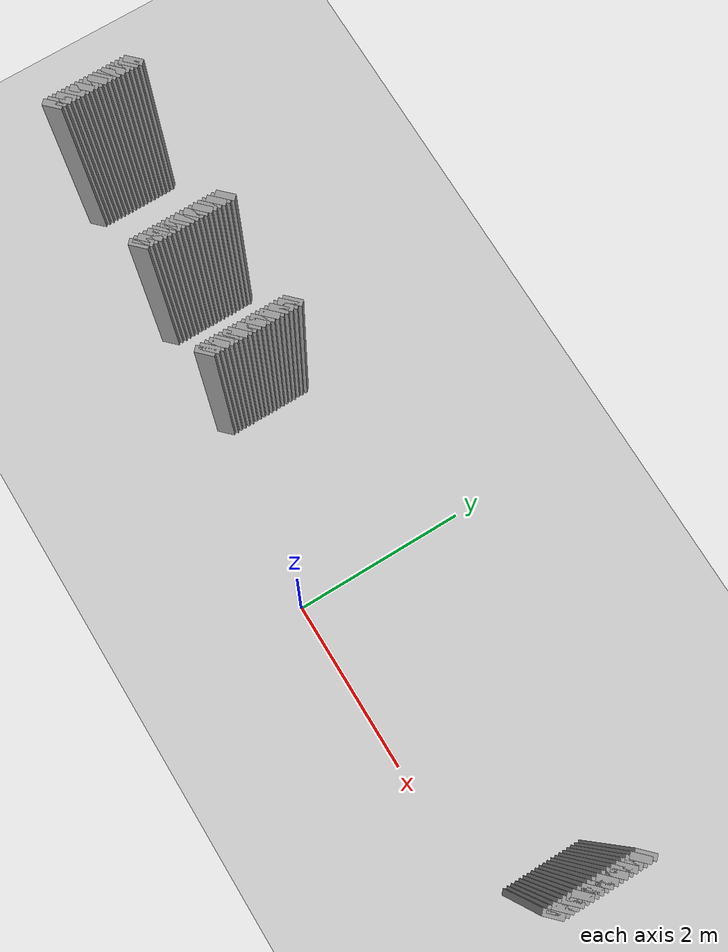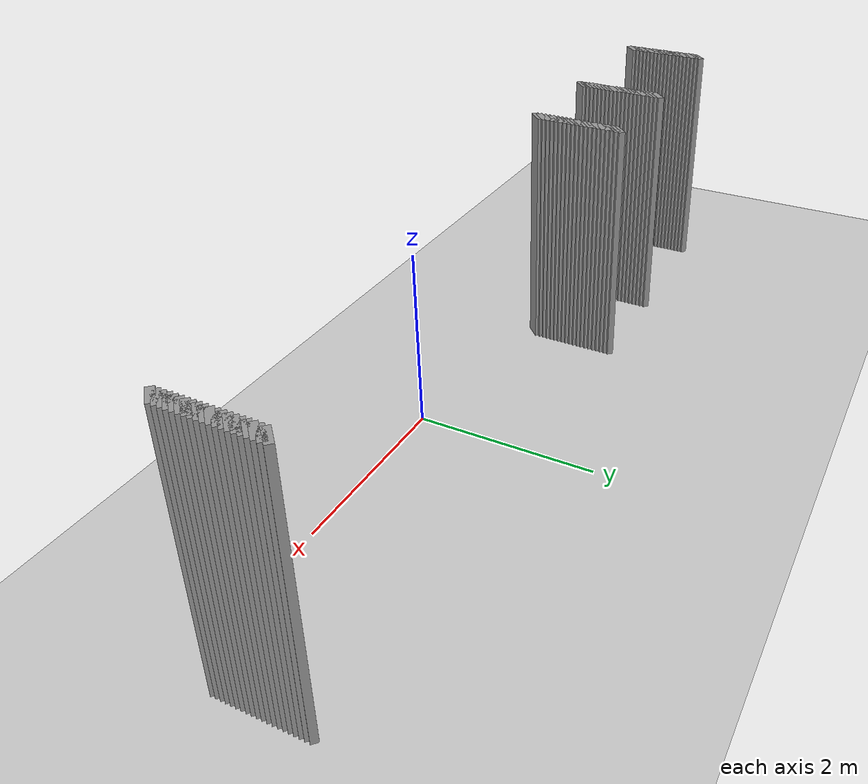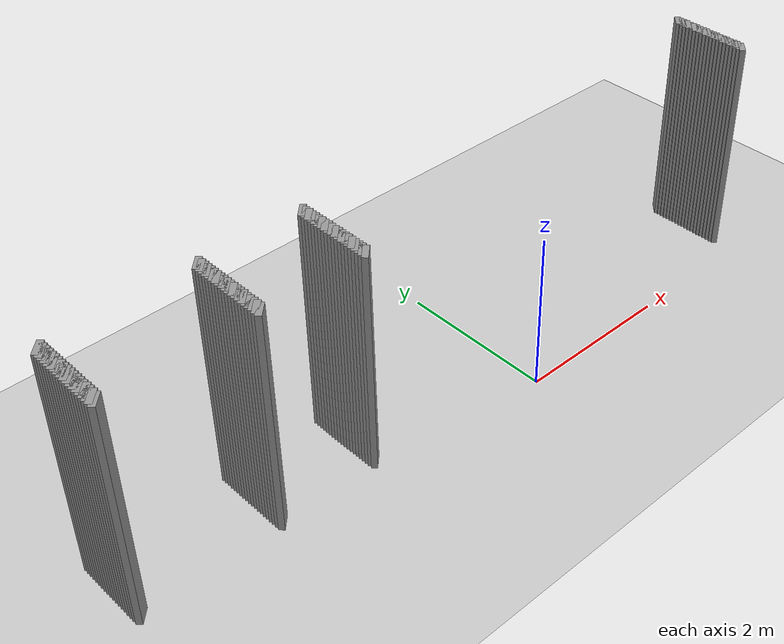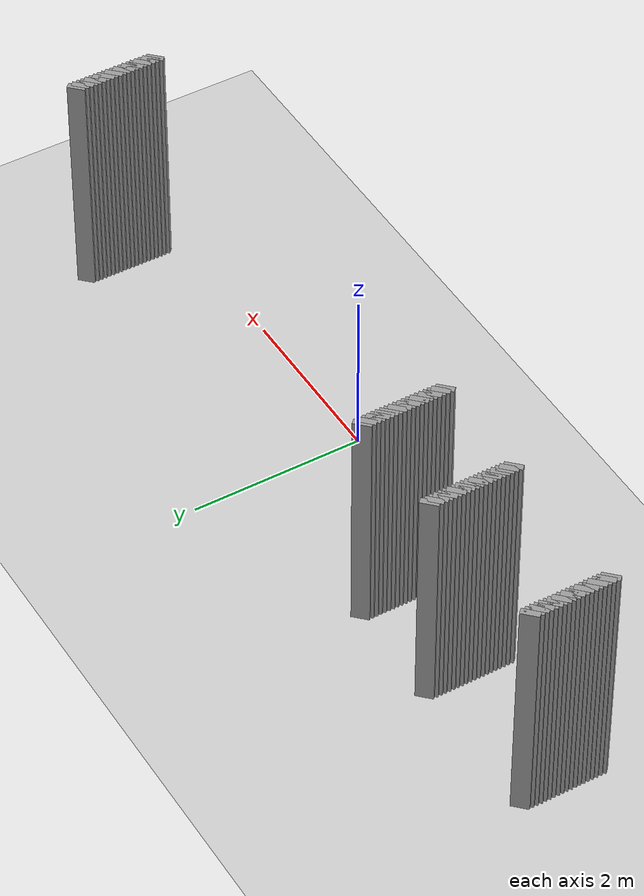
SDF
<sdf version="1.5">
 <world name="default">
  <include><uri>model://ground_plane</uri></include>
  <include><uri>model://sun</uri></include>
  <model name="grey_wall_786">
   <static>1</static>
   <link name="link">
    <pose>-3.425 1.275  1.4 0 0 -0.785398163397</pose>
    <collision name="collision"><geometry><box><size>0.0707106781187 .2  2.8</size></box></geometry></collision>
    <visual name="visual">
     <cast_shadows>0</cast_shadows>
     <geometry><box><size>0.0707106781187 .2  2.8</size></box></geometry>
     <material>
      <script>
       <uri>model://grey_wall/materials/scripts</uri>
       <uri>model://grey_wall/materials/textures</uri>
       <name>vrc/grey_wall</name>
      </script>
     </material>
    </visual>
   </link>
  </model>
  <model name="grey_wall_787">
   <static>1</static>
   <link name="link">
    <pose>-2.175 1.275  1.4 0 0 -0.785398163397</pose>
    <collision name="collision"><geometry><box><size>0.0707106781187 .2  2.8</size></box></geometry></collision>
    <visual name="visual">
     <cast_shadows>0</cast_shadows>
     <geometry><box><size>0.0707106781187 .2  2.8</size></box></geometry>
     <material>
      <script>
       <uri>model://grey_wall/materials/scripts</uri>
       <uri>model://grey_wall/materials/textures</uri>
       <name>vrc/grey_wall</name>
      </script>
     </material>
    </visual>
   </link>
  </model>
  <model name="grey_wall_788">
   <static>1</static>
   <link name="link">
    <pose>3.725 1.275  1.4 0 0 -0.785398163397</pose>
    <collision name="collision"><geometry><box><size>0.0707106781187 .2  2.8</size></box></geometry></collision>
    <visual name="visual">
     <cast_shadows>0</cast_shadows>
     <geometry><box><size>0.0707106781187 .2  2.8</size></box></geometry>
     <material>
      <script>
       <uri>model://grey_wall/materials/scripts</uri>
       <uri>model://grey_wall/materials/textures</uri>
       <name>vrc/grey_wall</name>
      </script>
     </material>
    </visual>
   </link>
  </model>
  <model name="grey_wall_789">
   <static>1</static>
   <link name="link">
    <pose>-5.125 1.225  1.4 0 0 -0.785398163397</pose>
    <collision name="collision"><geometry><box><size>0.0707106781187 .2  2.8</size></box></geometry></collision>
    <visual name="visual">
     <cast_shadows>0</cast_shadows>
     <geometry><box><size>0.0707106781187 .2  2.8</size></box></geometry>
     <material>
      <script>
       <uri>model://grey_wall/materials/scripts</uri>
       <uri>model://grey_wall/materials/textures</uri>
       <name>vrc/grey_wall</name>
      </script>
     </material>
    </visual>
   </link>
  </model>
  <model name="grey_wall_790">
   <static>1</static>
   <link name="link">
    <pose>-3.425 1.225  1.4 0 0 -0.785398163397</pose>
    <collision name="collision"><geometry><box><size>0.0707106781187 .2  2.8</size></box></geometry></collision>
    <visual name="visual">
     <cast_shadows>0</cast_shadows>
     <geometry><box><size>0.0707106781187 .2  2.8</size></box></geometry>
     <material>
      <script>
       <uri>model://grey_wall/materials/scripts</uri>
       <uri>model://grey_wall/materials/textures</uri>
       <name>vrc/grey_wall</name>
      </script>
     </material>
    </visual>
   </link>
  </model>
  <model name="grey_wall_791">
   <static>1</static>
   <link name="link">
    <pose>-2.175 1.225  1.4 0 0 -0.785398163397</pose>
    <collision name="collision"><geometry><box><size>0.0707106781187 .2  2.8</size></box></geometry></collision>
    <visual name="visual">
     <cast_shadows>0</cast_shadows>
     <geometry><box><size>0.0707106781187 .2  2.8</size></box></geometry>
     <material>
      <script>
       <uri>model://grey_wall/materials/scripts</uri>
       <uri>model://grey_wall/materials/textures</uri>
       <name>vrc/grey_wall</name>
      </script>
     </material>
    </visual>
   </link>
  </model>
  <model name="grey_wall_792">
   <static>1</static>
   <link name="link">
    <pose>3.725 1.225  1.4 0 0 -0.785398163397</pose>
    <collision name="collision"><geometry><box><size>0.0707106781187 .2  2.8</size></box></geometry></collision>
    <visual name="visual">
     <cast_shadows>0</cast_shadows>
     <geometry><box><size>0.0707106781187 .2  2.8</size></box></geometry>
     <material>
      <script>
       <uri>model://grey_wall/materials/scripts</uri>
       <uri>model://grey_wall/materials/textures</uri>
       <name>vrc/grey_wall</name>
      </script>
     </material>
    </visual>
   </link>
  </model>
  <model name="grey_wall_793">
   <static>1</static>
   <link name="link">
    <pose>-5.125 1.175  1.4 0 0 -0.785398163397</pose>
    <collision name="collision"><geometry><box><size>0.0707106781187 .2  2.8</size></box></geometry></collision>
    <visual name="visual">
     <cast_shadows>0</cast_shadows>
     <geometry><box><size>0.0707106781187 .2  2.8</size></box></geometry>
     <material>
      <script>
       <uri>model://grey_wall/materials/scripts</uri>
       <uri>model://grey_wall/materials/textures</uri>
       <name>vrc/grey_wall</name>
      </script>
     </material>
    </visual>
   </link>
  </model>
  <model name="grey_wall_794">
   <static>1</static>
   <link name="link">
    <pose>-3.425 1.175  1.4 0 0 -0.785398163397</pose>
    <collision name="collision"><geometry><box><size>0.0707106781187 .2  2.8</size></box></geometry></collision>
    <visual name="visual">
     <cast_shadows>0</cast_shadows>
     <geometry><box><size>0.0707106781187 .2  2.8</size></box></geometry>
     <material>
      <script>
       <uri>model://grey_wall/materials/scripts</uri>
       <uri>model://grey_wall/materials/textures</uri>
       <name>vrc/grey_wall</name>
      </script>
     </material>
    </visual>
   </link>
  </model>
  <model name="grey_wall_795">
   <static>1</static>
   <link name="link">
    <pose>-2.175 1.175  1.4 0 0 -0.785398163397</pose>
    <collision name="collision"><geometry><box><size>0.0707106781187 .2  2.8</size></box></geometry></collision>
    <visual name="visual">
     <cast_shadows>0</cast_shadows>
     <geometry><box><size>0.0707106781187 .2  2.8</size></box></geometry>
     <material>
      <script>
       <uri>model://grey_wall/materials/scripts</uri>
       <uri>model://grey_wall/materials/textures</uri>
       <name>vrc/grey_wall</name>
      </script>
     </material>
    </visual>
   </link>
  </model>
  <model name="grey_wall_796">
   <static>1</static>
   <link name="link">
    <pose>3.725 1.175  1.4 0 0 -0.785398163397</pose>
    <collision name="collision"><geometry><box><size>0.0707106781187 .2  2.8</size></box></geometry></collision>
    <visual name="visual">
     <cast_shadows>0</cast_shadows>
     <geometry><box><size>0.0707106781187 .2  2.8</size></box></geometry>
     <material>
      <script>
       <uri>model://grey_wall/materials/scripts</uri>
       <uri>model://grey_wall/materials/textures</uri>
       <name>vrc/grey_wall</name>
      </script>
     </material>
    </visual>
   </link>
  </model>
  <model name="grey_wall_797">
   <static>1</static>
   <link name="link">
    <pose>-5.125 1.125  1.4 0 0 -0.785398163397</pose>
    <collision name="collision"><geometry><box><size>0.0707106781187 .2  2.8</size></box></geometry></collision>
    <visual name="visual">
     <cast_shadows>0</cast_shadows>
     <geometry><box><size>0.0707106781187 .2  2.8</size></box></geometry>
     <material>
      <script>
       <uri>model://grey_wall/materials/scripts</uri>
       <uri>model://grey_wall/materials/textures</uri>
       <name>vrc/grey_wall</name>
      </script>
     </material>
    </visual>
   </link>
  </model>
  <model name="grey_wall_798">
   <static>1</static>
   <link name="link">
    <pose>-3.425 1.125  1.4 0 0 -0.785398163397</pose>
    <collision name="collision"><geometry><box><size>0.0707106781187 .2  2.8</size></box></geometry></collision>
    <visual name="visual">
     <cast_shadows>0</cast_shadows>
     <geometry><box><size>0.0707106781187 .2  2.8</size></box></geometry>
     <material>
      <script>
       <uri>model://grey_wall/materials/scripts</uri>
       <uri>model://grey_wall/materials/textures</uri>
       <name>vrc/grey_wall</name>
      </script>
     </material>
    </visual>
   </link>
  </model>
  <model name="grey_wall_799">
   <static>1</static>
   <link name="link">
    <pose>-2.175 1.125  1.4 0 0 -0.785398163397</pose>
    <collision name="collision"><geometry><box><size>0.0707106781187 .2  2.8</size></box></geometry></collision>
    <visual name="visual">
     <cast_shadows>0</cast_shadows>
     <geometry><box><size>0.0707106781187 .2  2.8</size></box></geometry>
     <material>
      <script>
       <uri>model://grey_wall/materials/scripts</uri>
       <uri>model://grey_wall/materials/textures</uri>
       <name>vrc/grey_wall</name>
      </script>
     </material>
    </visual>
   </link>
  </model>
  <model name="grey_wall_800">
   <static>1</static>
   <link name="link">
    <pose>3.725 1.125  1.4 0 0 -0.785398163397</pose>
    <collision name="collision"><geometry><box><size>0.0707106781187 .2  2.8</size></box></geometry></collision>
    <visual name="visual">
     <cast_shadows>0</cast_shadows>
     <geometry><box><size>0.0707106781187 .2  2.8</size></box></geometry>
     <material>
      <script>
       <uri>model://grey_wall/materials/scripts</uri>
       <uri>model://grey_wall/materials/textures</uri>
       <name>vrc/grey_wall</name>
      </script>
     </material>
    </visual>
   </link>
  </model>
  <model name="grey_wall_801">
   <static>1</static>
   <link name="link">
    <pose>-5.125 1.075  1.4 0 0 -0.785398163397</pose>
    <collision name="collision"><geometry><box><size>0.0707106781187 .2  2.8</size></box></geometry></collision>
    <visual name="visual">
     <cast_shadows>0</cast_shadows>
     <geometry><box><size>0.0707106781187 .2  2.8</size></box></geometry>
     <material>
      <script>
       <uri>model://grey_wall/materials/scripts</uri>
       <uri>model://grey_wall/materials/textures</uri>
       <name>vrc/grey_wall</name>
      </script>
     </material>
    </visual>
   </link>
  </model>
  <model name="grey_wall_802">
   <static>1</static>
   <link name="link">
    <pose>-3.425 1.075  1.4 0 0 -0.785398163397</pose>
    <collision name="collision"><geometry><box><size>0.0707106781187 .2  2.8</size></box></geometry></collision>
    <visual name="visual">
     <cast_shadows>0</cast_shadows>
     <geometry><box><size>0.0707106781187 .2  2.8</size></box></geometry>
     <material>
      <script>
       <uri>model://grey_wall/materials/scripts</uri>
       <uri>model://grey_wall/materials/textures</uri>
       <name>vrc/grey_wall</name>
      </script>
     </material>
    </visual>
   </link>
  </model>
  <model name="grey_wall_803">
   <static>1</static>
   <link name="link">
    <pose>-2.175 1.075  1.4 0 0 -0.785398163397</pose>
    <collision name="collision"><geometry><box><size>0.0707106781187 .2  2.8</size></box></geometry></collision>
    <visual name="visual">
     <cast_shadows>0</cast_shadows>
     <geometry><box><size>0.0707106781187 .2  2.8</size></box></geometry>
     <material>
      <script>
       <uri>model://grey_wall/materials/scripts</uri>
       <uri>model://grey_wall/materials/textures</uri>
       <name>vrc/grey_wall</name>
      </script>
     </material>
    </visual>
   </link>
  </model>
  <model name="grey_wall_804">
   <static>1</static>
   <link name="link">
    <pose>3.725 1.075  1.4 0 0 -0.785398163397</pose>
    <collision name="collision"><geometry><box><size>0.0707106781187 .2  2.8</size></box></geometry></collision>
    <visual name="visual">
     <cast_shadows>0</cast_shadows>
     <geometry><box><size>0.0707106781187 .2  2.8</size></box></geometry>
     <material>
      <script>
       <uri>model://grey_wall/materials/scripts</uri>
       <uri>model://grey_wall/materials/textures</uri>
       <name>vrc/grey_wall</name>
      </script>
     </material>
    </visual>
   </link>
  </model>
  <model name="grey_wall_805">
   <static>1</static>
   <link name="link">
    <pose>-5.125 1.025  1.4 0 0 -0.785398163397</pose>
    <collision name="collision"><geometry><box><size>0.0707106781187 .2  2.8</size></box></geometry></collision>
    <visual name="visual">
     <cast_shadows>0</cast_shadows>
     <geometry><box><size>0.0707106781187 .2  2.8</size></box></geometry>
     <material>
      <script>
       <uri>model://grey_wall/materials/scripts</uri>
       <uri>model://grey_wall/materials/textures</uri>
       <name>vrc/grey_wall</name>
      </script>
     </material>
    </visual>
   </link>
  </model>
  <model name="grey_wall_806">
   <static>1</static>
   <link name="link">
    <pose>-3.425 1.025  1.4 0 0 -0.785398163397</pose>
    <collision name="collision"><geometry><box><size>0.0707106781187 .2  2.8</size></box></geometry></collision>
    <visual name="visual">
     <cast_shadows>0</cast_shadows>
     <geometry><box><size>0.0707106781187 .2  2.8</size></box></geometry>
     <material>
      <script>
       <uri>model://grey_wall/materials/scripts</uri>
       <uri>model://grey_wall/materials/textures</uri>
       <name>vrc/grey_wall</name>
      </script>
     </material>
    </visual>
   </link>
  </model>
  <model name="grey_wall_807">
   <static>1</static>
   <link name="link">
    <pose>-2.175 1.025  1.4 0 0 -0.785398163397</pose>
    <collision name="collision"><geometry><box><size>0.0707106781187 .2  2.8</size></box></geometry></collision>
    <visual name="visual">
     <cast_shadows>0</cast_shadows>
     <geometry><box><size>0.0707106781187 .2  2.8</size></box></geometry>
     <material>
      <script>
       <uri>model://grey_wall/materials/scripts</uri>
       <uri>model://grey_wall/materials/textures</uri>
       <name>vrc/grey_wall</name>
      </script>
     </material>
    </visual>
   </link>
  </model>
  <model name="grey_wall_808">
   <static>1</static>
   <link name="link">
    <pose>3.725 1.025  1.4 0 0 -0.785398163397</pose>
    <collision name="collision"><geometry><box><size>0.0707106781187 .2  2.8</size></box></geometry></collision>
    <visual name="visual">
     <cast_shadows>0</cast_shadows>
     <geometry><box><size>0.0707106781187 .2  2.8</size></box></geometry>
     <material>
      <script>
       <uri>model://grey_wall/materials/scripts</uri>
       <uri>model://grey_wall/materials/textures</uri>
       <name>vrc/grey_wall</name>
      </script>
     </material>
    </visual>
   </link>
  </model>
  <model name="grey_wall_809">
   <static>1</static>
   <link name="link">
    <pose>-5.125 0.975  1.4 0 0 -0.785398163397</pose>
    <collision name="collision"><geometry><box><size>0.0707106781187 .2  2.8</size></box></geometry></collision>
    <visual name="visual">
     <cast_shadows>0</cast_shadows>
     <geometry><box><size>0.0707106781187 .2  2.8</size></box></geometry>
     <material>
      <script>
       <uri>model://grey_wall/materials/scripts</uri>
       <uri>model://grey_wall/materials/textures</uri>
       <name>vrc/grey_wall</name>
      </script>
     </material>
    </visual>
   </link>
  </model>
  <model name="grey_wall_810">
   <static>1</static>
   <link name="link">
    <pose>-3.425 0.975  1.4 0 0 -0.785398163397</pose>
    <collision name="collision"><geometry><box><size>0.0707106781187 .2  2.8</size></box></geometry></collision>
    <visual name="visual">
     <cast_shadows>0</cast_shadows>
     <geometry><box><size>0.0707106781187 .2  2.8</size></box></geometry>
     <material>
      <script>
       <uri>model://grey_wall/materials/scripts</uri>
       <uri>model://grey_wall/materials/textures</uri>
       <name>vrc/grey_wall</name>
      </script>
     </material>
    </visual>
   </link>
  </model>
  <model name="grey_wall_811">
   <static>1</static>
   <link name="link">
    <pose>-2.175 0.975  1.4 0 0 -0.785398163397</pose>
    <collision name="collision"><geometry><box><size>0.0707106781187 .2  2.8</size></box></geometry></collision>
    <visual name="visual">
     <cast_shadows>0</cast_shadows>
     <geometry><box><size>0.0707106781187 .2  2.8</size></box></geometry>
     <material>
      <script>
       <uri>model://grey_wall/materials/scripts</uri>
       <uri>model://grey_wall/materials/textures</uri>
       <name>vrc/grey_wall</name>
      </script>
     </material>
    </visual>
   </link>
  </model>
  <model name="grey_wall_812">
   <static>1</static>
   <link name="link">
    <pose>3.725 0.975  1.4 0 0 -0.785398163397</pose>
    <collision name="collision"><geometry><box><size>0.0707106781187 .2  2.8</size></box></geometry></collision>
    <visual name="visual">
     <cast_shadows>0</cast_shadows>
     <geometry><box><size>0.0707106781187 .2  2.8</size></box></geometry>
     <material>
      <script>
       <uri>model://grey_wall/materials/scripts</uri>
       <uri>model://grey_wall/materials/textures</uri>
       <name>vrc/grey_wall</name>
      </script>
     </material>
    </visual>
   </link>
  </model>
  <model name="grey_wall_813">
   <static>1</static>
   <link name="link">
    <pose>-5.125 0.925  1.4 0 0 -0.785398163397</pose>
    <collision name="collision"><geometry><box><size>0.0707106781187 .2  2.8</size></box></geometry></collision>
    <visual name="visual">
     <cast_shadows>0</cast_shadows>
     <geometry><box><size>0.0707106781187 .2  2.8</size></box></geometry>
     <material>
      <script>
       <uri>model://grey_wall/materials/scripts</uri>
       <uri>model://grey_wall/materials/textures</uri>
       <name>vrc/grey_wall</name>
      </script>
     </material>
    </visual>
   </link>
  </model>
  <model name="grey_wall_814">
   <static>1</static>
   <link name="link">
    <pose>-3.425 0.925  1.4 0 0 -0.785398163397</pose>
    <collision name="collision"><geometry><box><size>0.0707106781187 .2  2.8</size></box></geometry></collision>
    <visual name="visual">
     <cast_shadows>0</cast_shadows>
     <geometry><box><size>0.0707106781187 .2  2.8</size></box></geometry>
     <material>
      <script>
       <uri>model://grey_wall/materials/scripts</uri>
       <uri>model://grey_wall/materials/textures</uri>
       <name>vrc/grey_wall</name>
      </script>
     </material>
    </visual>
   </link>
  </model>
  <model name="grey_wall_815">
   <static>1</static>
   <link name="link">
    <pose>-2.175 0.925  1.4 0 0 -0.785398163397</pose>
    <collision name="collision"><geometry><box><size>0.0707106781187 .2  2.8</size></box></geometry></collision>
    <visual name="visual">
     <cast_shadows>0</cast_shadows>
     <geometry><box><size>0.0707106781187 .2  2.8</size></box></geometry>
     <material>
      <script>
       <uri>model://grey_wall/materials/scripts</uri>
       <uri>model://grey_wall/materials/textures</uri>
       <name>vrc/grey_wall</name>
      </script>
     </material>
    </visual>
   </link>
  </model>
  <model name="grey_wall_816">
   <static>1</static>
   <link name="link">
    <pose>3.725 0.925  1.4 0 0 -0.785398163397</pose>
    <collision name="collision"><geometry><box><size>0.0707106781187 .2  2.8</size></box></geometry></collision>
    <visual name="visual">
     <cast_shadows>0</cast_shadows>
     <geometry><box><size>0.0707106781187 .2  2.8</size></box></geometry>
     <material>
      <script>
       <uri>model://grey_wall/materials/scripts</uri>
       <uri>model://grey_wall/materials/textures</uri>
       <name>vrc/grey_wall</name>
      </script>
     </material>
    </visual>
   </link>
  </model>
  <model name="grey_wall_817">
   <static>1</static>
   <link name="link">
    <pose>-5.125 0.875  1.4 0 0 -0.785398163397</pose>
    <collision name="collision"><geometry><box><size>0.0707106781187 .2  2.8</size></box></geometry></collision>
    <visual name="visual">
     <cast_shadows>0</cast_shadows>
     <geometry><box><size>0.0707106781187 .2  2.8</size></box></geometry>
     <material>
      <script>
       <uri>model://grey_wall/materials/scripts</uri>
       <uri>model://grey_wall/materials/textures</uri>
       <name>vrc/grey_wall</name>
      </script>
     </material>
    </visual>
   </link>
  </model>
  <model name="grey_wall_818">
   <static>1</static>
   <link name="link">
    <pose>-3.425 0.875  1.4 0 0 -0.785398163397</pose>
    <collision name="collision"><geometry><box><size>0.0707106781187 .2  2.8</size></box></geometry></collision>
    <visual name="visual">
     <cast_shadows>0</cast_shadows>
     <geometry><box><size>0.0707106781187 .2  2.8</size></box></geometry>
     <material>
      <script>
       <uri>model://grey_wall/materials/scripts</uri>
       <uri>model://grey_wall/materials/textures</uri>
       <name>vrc/grey_wall</name>
      </script>
     </material>
    </visual>
   </link>
  </model>
  <model name="grey_wall_819">
   <static>1</static>
   <link name="link">
    <pose>-2.175 0.875  1.4 0 0 -0.785398163397</pose>
    <collision name="collision"><geometry><box><size>0.0707106781187 .2  2.8</size></box></geometry></collision>
    <visual name="visual">
     <cast_shadows>0</cast_shadows>
     <geometry><box><size>0.0707106781187 .2  2.8</size></box></geometry>
     <material>
      <script>
       <uri>model://grey_wall/materials/scripts</uri>
       <uri>model://grey_wall/materials/textures</uri>
       <name>vrc/grey_wall</name>
      </script>
     </material>
    </visual>
   </link>
  </model>
  <model name="grey_wall_820">
   <static>1</static>
   <link name="link">
    <pose>3.725 0.875  1.4 0 0 -0.785398163397</pose>
    <collision name="collision"><geometry><box><size>0.0707106781187 .2  2.8</size></box></geometry></collision>
    <visual name="visual">
     <cast_shadows>0</cast_shadows>
     <geometry><box><size>0.0707106781187 .2  2.8</size></box></geometry>
     <material>
      <script>
       <uri>model://grey_wall/materials/scripts</uri>
       <uri>model://grey_wall/materials/textures</uri>
       <name>vrc/grey_wall</name>
      </script>
     </material>
    </visual>
   </link>
  </model>
  <model name="grey_wall_821">
   <static>1</static>
   <link name="link">
    <pose>-5.125 0.825  1.4 0 0 -0.785398163397</pose>
    <collision name="collision"><geometry><box><size>0.0707106781187 .2  2.8</size></box></geometry></collision>
    <visual name="visual">
     <cast_shadows>0</cast_shadows>
     <geometry><box><size>0.0707106781187 .2  2.8</size></box></geometry>
     <material>
      <script>
       <uri>model://grey_wall/materials/scripts</uri>
       <uri>model://grey_wall/materials/textures</uri>
       <name>vrc/grey_wall</name>
      </script>
     </material>
    </visual>
   </link>
  </model>
  <model name="grey_wall_822">
   <static>1</static>
   <link name="link">
    <pose>-3.425 0.825  1.4 0 0 -0.785398163397</pose>
    <collision name="collision"><geometry><box><size>0.0707106781187 .2  2.8</size></box></geometry></collision>
    <visual name="visual">
     <cast_shadows>0</cast_shadows>
     <geometry><box><size>0.0707106781187 .2  2.8</size></box></geometry>
     <material>
      <script>
       <uri>model://grey_wall/materials/scripts</uri>
       <uri>model://grey_wall/materials/textures</uri>
       <name>vrc/grey_wall</name>
      </script>
     </material>
    </visual>
   </link>
  </model>
  <model name="grey_wall_823">
   <static>1</static>
   <link name="link">
    <pose>-2.175 0.825  1.4 0 0 -0.785398163397</pose>
    <collision name="collision"><geometry><box><size>0.0707106781187 .2  2.8</size></box></geometry></collision>
    <visual name="visual">
     <cast_shadows>0</cast_shadows>
     <geometry><box><size>0.0707106781187 .2  2.8</size></box></geometry>
     <material>
      <script>
       <uri>model://grey_wall/materials/scripts</uri>
       <uri>model://grey_wall/materials/textures</uri>
       <name>vrc/grey_wall</name>
      </script>
     </material>
    </visual>
   </link>
  </model>
  <model name="grey_wall_824">
   <static>1</static>
   <link name="link">
    <pose>3.725 0.825  1.4 0 0 -0.785398163397</pose>
    <collision name="collision"><geometry><box><size>0.0707106781187 .2  2.8</size></box></geometry></collision>
    <visual name="visual">
     <cast_shadows>0</cast_shadows>
     <geometry><box><size>0.0707106781187 .2  2.8</size></box></geometry>
     <material>
      <script>
       <uri>model://grey_wall/materials/scripts</uri>
       <uri>model://grey_wall/materials/textures</uri>
       <name>vrc/grey_wall</name>
      </script>
     </material>
    </visual>
   </link>
  </model>
  <model name="grey_wall_825">
   <static>1</static>
   <link name="link">
    <pose>-5.125 0.775  1.4 0 0 -0.785398163397</pose>
    <collision name="collision"><geometry><box><size>0.0707106781187 .2  2.8</size></box></geometry></collision>
    <visual name="visual">
     <cast_shadows>0</cast_shadows>
     <geometry><box><size>0.0707106781187 .2  2.8</size></box></geometry>
     <material>
      <script>
       <uri>model://grey_wall/materials/scripts</uri>
       <uri>model://grey_wall/materials/textures</uri>
       <name>vrc/grey_wall</name>
      </script>
     </material>
    </visual>
   </link>
  </model>
  <model name="grey_wall_826">
   <static>1</static>
   <link name="link">
    <pose>-3.425 0.775  1.4 0 0 -0.785398163397</pose>
    <collision name="collision"><geometry><box><size>0.0707106781187 .2  2.8</size></box></geometry></collision>
    <visual name="visual">
     <cast_shadows>0</cast_shadows>
     <geometry><box><size>0.0707106781187 .2  2.8</size></box></geometry>
     <material>
      <script>
       <uri>model://grey_wall/materials/scripts</uri>
       <uri>model://grey_wall/materials/textures</uri>
       <name>vrc/grey_wall</name>
      </script>
     </material>
    </visual>
   </link>
  </model>
  <model name="grey_wall_827">
   <static>1</static>
   <link name="link">
    <pose>-2.175 0.775  1.4 0 0 -0.785398163397</pose>
    <collision name="collision"><geometry><box><size>0.0707106781187 .2  2.8</size></box></geometry></collision>
    <visual name="visual">
     <cast_shadows>0</cast_shadows>
     <geometry><box><size>0.0707106781187 .2  2.8</size></box></geometry>
     <material>
      <script>
       <uri>model://grey_wall/materials/scripts</uri>
       <uri>model://grey_wall/materials/textures</uri>
       <name>vrc/grey_wall</name>
      </script>
     </material>
    </visual>
   </link>
  </model>
  <model name="grey_wall_828">
   <static>1</static>
   <link name="link">
    <pose>3.725 0.775  1.4 0 0 -0.785398163397</pose>
    <collision name="collision"><geometry><box><size>0.0707106781187 .2  2.8</size></box></geometry></collision>
    <visual name="visual">
     <cast_shadows>0</cast_shadows>
     <geometry><box><size>0.0707106781187 .2  2.8</size></box></geometry>
     <material>
      <script>
       <uri>model://grey_wall/materials/scripts</uri>
       <uri>model://grey_wall/materials/textures</uri>
       <name>vrc/grey_wall</name>
      </script>
     </material>
    </visual>
   </link>
  </model>
  <model name="grey_wall_829">
   <static>1</static>
   <link name="link">
    <pose>-5.125 0.725  1.4 0 0 -0.785398163397</pose>
    <collision name="collision"><geometry><box><size>0.0707106781187 .2  2.8</size></box></geometry></collision>
    <visual name="visual">
     <cast_shadows>0</cast_shadows>
     <geometry><box><size>0.0707106781187 .2  2.8</size></box></geometry>
     <material>
      <script>
       <uri>model://grey_wall/materials/scripts</uri>
       <uri>model://grey_wall/materials/textures</uri>
       <name>vrc/grey_wall</name>
      </script>
     </material>
    </visual>
   </link>
  </model>
  <model name="grey_wall_830">
   <static>1</static>
   <link name="link">
    <pose>-3.425 0.725  1.4 0 0 -0.785398163397</pose>
    <collision name="collision"><geometry><box><size>0.0707106781187 .2  2.8</size></box></geometry></collision>
    <visual name="visual">
     <cast_shadows>0</cast_shadows>
     <geometry><box><size>0.0707106781187 .2  2.8</size></box></geometry>
     <material>
      <script>
       <uri>model://grey_wall/materials/scripts</uri>
       <uri>model://grey_wall/materials/textures</uri>
       <name>vrc/grey_wall</name>
      </script>
     </material>
    </visual>
   </link>
  </model>
  <model name="grey_wall_831">
   <static>1</static>
   <link name="link">
    <pose>-2.175 0.725  1.4 0 0 -0.785398163397</pose>
    <collision name="collision"><geometry><box><size>0.0707106781187 .2  2.8</size></box></geometry></collision>
    <visual name="visual">
     <cast_shadows>0</cast_shadows>
     <geometry><box><size>0.0707106781187 .2  2.8</size></box></geometry>
     <material>
      <script>
       <uri>model://grey_wall/materials/scripts</uri>
       <uri>model://grey_wall/materials/textures</uri>
       <name>vrc/grey_wall</name>
      </script>
     </material>
    </visual>
   </link>
  </model>
  <model name="grey_wall_832">
   <static>1</static>
   <link name="link">
    <pose>3.725 0.725  1.4 0 0 -0.785398163397</pose>
    <collision name="collision"><geometry><box><size>0.0707106781187 .2  2.8</size></box></geometry></collision>
    <visual name="visual">
     <cast_shadows>0</cast_shadows>
     <geometry><box><size>0.0707106781187 .2  2.8</size></box></geometry>
     <material>
      <script>
       <uri>model://grey_wall/materials/scripts</uri>
       <uri>model://grey_wall/materials/textures</uri>
       <name>vrc/grey_wall</name>
      </script>
     </material>
    </visual>
   </link>
  </model>
  <model name="grey_wall_833">
   <static>1</static>
   <link name="link">
    <pose>-5.125 0.675  1.4 0 0 -0.785398163397</pose>
    <collision name="collision"><geometry><box><size>0.0707106781187 .2  2.8</size></box></geometry></collision>
    <visual name="visual">
     <cast_shadows>0</cast_shadows>
     <geometry><box><size>0.0707106781187 .2  2.8</size></box></geometry>
     <material>
      <script>
       <uri>model://grey_wall/materials/scripts</uri>
       <uri>model://grey_wall/materials/textures</uri>
       <name>vrc/grey_wall</name>
      </script>
     </material>
    </visual>
   </link>
  </model>
  <model name="grey_wall_834">
   <static>1</static>
   <link name="link">
    <pose>-3.425 0.675  1.4 0 0 -0.785398163397</pose>
    <collision name="collision"><geometry><box><size>0.0707106781187 .2  2.8</size></box></geometry></collision>
    <visual name="visual">
     <cast_shadows>0</cast_shadows>
     <geometry><box><size>0.0707106781187 .2  2.8</size></box></geometry>
     <material>
      <script>
       <uri>model://grey_wall/materials/scripts</uri>
       <uri>model://grey_wall/materials/textures</uri>
       <name>vrc/grey_wall</name>
      </script>
     </material>
    </visual>
   </link>
  </model>
  <model name="grey_wall_835">
   <static>1</static>
   <link name="link">
    <pose>-2.175 0.675  1.4 0 0 -0.785398163397</pose>
    <collision name="collision"><geometry><box><size>0.0707106781187 .2  2.8</size></box></geometry></collision>
    <visual name="visual">
     <cast_shadows>0</cast_shadows>
     <geometry><box><size>0.0707106781187 .2  2.8</size></box></geometry>
     <material>
      <script>
       <uri>model://grey_wall/materials/scripts</uri>
       <uri>model://grey_wall/materials/textures</uri>
       <name>vrc/grey_wall</name>
      </script>
     </material>
    </visual>
   </link>
  </model>
  <model name="grey_wall_836">
   <static>1</static>
   <link name="link">
    <pose>3.725 0.675  1.4 0 0 -0.785398163397</pose>
    <collision name="collision"><geometry><box><size>0.0707106781187 .2  2.8</size></box></geometry></collision>
    <visual name="visual">
     <cast_shadows>0</cast_shadows>
     <geometry><box><size>0.0707106781187 .2  2.8</size></box></geometry>
     <material>
      <script>
       <uri>model://grey_wall/materials/scripts</uri>
       <uri>model://grey_wall/materials/textures</uri>
       <name>vrc/grey_wall</name>
      </script>
     </material>
    </visual>
   </link>
  </model>
  <model name="grey_wall_837">
   <static>1</static>
   <link name="link">
    <pose>-5.125 0.625  1.4 0 0 -0.785398163397</pose>
    <collision name="collision"><geometry><box><size>0.0707106781187 .2  2.8</size></box></geometry></collision>
    <visual name="visual">
     <cast_shadows>0</cast_shadows>
     <geometry><box><size>0.0707106781187 .2  2.8</size></box></geometry>
     <material>
      <script>
       <uri>model://grey_wall/materials/scripts</uri>
       <uri>model://grey_wall/materials/textures</uri>
       <name>vrc/grey_wall</name>
      </script>
     </material>
    </visual>
   </link>
  </model>
  <model name="grey_wall_838">
   <static>1</static>
   <link name="link">
    <pose>-3.425 0.625  1.4 0 0 -0.785398163397</pose>
    <collision name="collision"><geometry><box><size>0.0707106781187 .2  2.8</size></box></geometry></collision>
    <visual name="visual">
     <cast_shadows>0</cast_shadows>
     <geometry><box><size>0.0707106781187 .2  2.8</size></box></geometry>
     <material>
      <script>
       <uri>model://grey_wall/materials/scripts</uri>
       <uri>model://grey_wall/materials/textures</uri>
       <name>vrc/grey_wall</name>
      </script>
     </material>
    </visual>
   </link>
  </model>
  <model name="grey_wall_839">
   <static>1</static>
   <link name="link">
    <pose>-2.175 0.625  1.4 0 0 -0.785398163397</pose>
    <collision name="collision"><geometry><box><size>0.0707106781187 .2  2.8</size></box></geometry></collision>
    <visual name="visual">
     <cast_shadows>0</cast_shadows>
     <geometry><box><size>0.0707106781187 .2  2.8</size></box></geometry>
     <material>
      <script>
       <uri>model://grey_wall/materials/scripts</uri>
       <uri>model://grey_wall/materials/textures</uri>
       <name>vrc/grey_wall</name>
      </script>
     </material>
    </visual>
   </link>
  </model>
  <model name="grey_wall_840">
   <static>1</static>
   <link name="link">
    <pose>3.725 0.625  1.4 0 0 -0.785398163397</pose>
    <collision name="collision"><geometry><box><size>0.0707106781187 .2  2.8</size></box></geometry></collision>
    <visual name="visual">
     <cast_shadows>0</cast_shadows>
     <geometry><box><size>0.0707106781187 .2  2.8</size></box></geometry>
     <material>
      <script>
       <uri>model://grey_wall/materials/scripts</uri>
       <uri>model://grey_wall/materials/textures</uri>
       <name>vrc/grey_wall</name>
      </script>
     </material>
    </visual>
   </link>
  </model>
  <model name="grey_wall_841">
   <static>1</static>
   <link name="link">
    <pose>-5.125 0.575  1.4 0 0 -0.785398163397</pose>
    <collision name="collision"><geometry><box><size>0.0707106781187 .2  2.8</size></box></geometry></collision>
    <visual name="visual">
     <cast_shadows>0</cast_shadows>
     <geometry><box><size>0.0707106781187 .2  2.8</size></box></geometry>
     <material>
      <script>
       <uri>model://grey_wall/materials/scripts</uri>
       <uri>model://grey_wall/materials/textures</uri>
       <name>vrc/grey_wall</name>
      </script>
     </material>
    </visual>
   </link>
  </model>
  <model name="grey_wall_842">
   <static>1</static>
   <link name="link">
    <pose>-3.425 0.575  1.4 0 0 -0.785398163397</pose>
    <collision name="collision"><geometry><box><size>0.0707106781187 .2  2.8</size></box></geometry></collision>
    <visual name="visual">
     <cast_shadows>0</cast_shadows>
     <geometry><box><size>0.0707106781187 .2  2.8</size></box></geometry>
     <material>
      <script>
       <uri>model://grey_wall/materials/scripts</uri>
       <uri>model://grey_wall/materials/textures</uri>
       <name>vrc/grey_wall</name>
      </script>
     </material>
    </visual>
   </link>
  </model>
  <model name="grey_wall_843">
   <static>1</static>
   <link name="link">
    <pose>-2.175 0.575  1.4 0 0 -0.785398163397</pose>
    <collision name="collision"><geometry><box><size>0.0707106781187 .2  2.8</size></box></geometry></collision>
    <visual name="visual">
     <cast_shadows>0</cast_shadows>
     <geometry><box><size>0.0707106781187 .2  2.8</size></box></geometry>
     <material>
      <script>
       <uri>model://grey_wall/materials/scripts</uri>
       <uri>model://grey_wall/materials/textures</uri>
       <name>vrc/grey_wall</name>
      </script>
     </material>
    </visual>
   </link>
  </model>
  <model name="grey_wall_844">
   <static>1</static>
   <link name="link">
    <pose>3.725 0.575  1.4 0 0 -0.785398163397</pose>
    <collision name="collision"><geometry><box><size>0.0707106781187 .2  2.8</size></box></geometry></collision>
    <visual name="visual">
     <cast_shadows>0</cast_shadows>
     <geometry><box><size>0.0707106781187 .2  2.8</size></box></geometry>
     <material>
      <script>
       <uri>model://grey_wall/materials/scripts</uri>
       <uri>model://grey_wall/materials/textures</uri>
       <name>vrc/grey_wall</name>
      </script>
     </material>
    </visual>
   </link>
  </model>
  <model name="grey_wall_845">
   <static>1</static>
   <link name="link">
    <pose>-5.125 0.525  1.4 0 0 -0.785398163397</pose>
    <collision name="collision"><geometry><box><size>0.0707106781187 .2  2.8</size></box></geometry></collision>
    <visual name="visual">
     <cast_shadows>0</cast_shadows>
     <geometry><box><size>0.0707106781187 .2  2.8</size></box></geometry>
     <material>
      <script>
       <uri>model://grey_wall/materials/scripts</uri>
       <uri>model://grey_wall/materials/textures</uri>
       <name>vrc/grey_wall</name>
      </script>
     </material>
    </visual>
   </link>
  </model>
  <model name="grey_wall_846">
   <static>1</static>
   <link name="link">
    <pose>-3.425 0.525  1.4 0 0 -0.785398163397</pose>
    <collision name="collision"><geometry><box><size>0.0707106781187 .2  2.8</size></box></geometry></collision>
    <visual name="visual">
     <cast_shadows>0</cast_shadows>
     <geometry><box><size>0.0707106781187 .2  2.8</size></box></geometry>
     <material>
      <script>
       <uri>model://grey_wall/materials/scripts</uri>
       <uri>model://grey_wall/materials/textures</uri>
       <name>vrc/grey_wall</name>
      </script>
     </material>
    </visual>
   </link>
  </model>
  <model name="grey_wall_847">
   <static>1</static>
   <link name="link">
    <pose>-2.175 0.525  1.4 0 0 -0.785398163397</pose>
    <collision name="collision"><geometry><box><size>0.0707106781187 .2  2.8</size></box></geometry></collision>
    <visual name="visual">
     <cast_shadows>0</cast_shadows>
     <geometry><box><size>0.0707106781187 .2  2.8</size></box></geometry>
     <material>
      <script>
       <uri>model://grey_wall/materials/scripts</uri>
       <uri>model://grey_wall/materials/textures</uri>
       <name>vrc/grey_wall</name>
      </script>
     </material>
    </visual>
   </link>
  </model>
  <model name="grey_wall_848">
   <static>1</static>
   <link name="link">
    <pose>3.725 0.525  1.4 0 0 -0.785398163397</pose>
    <collision name="collision"><geometry><box><size>0.0707106781187 .2  2.8</size></box></geometry></collision>
    <visual name="visual">
     <cast_shadows>0</cast_shadows>
     <geometry><box><size>0.0707106781187 .2  2.8</size></box></geometry>
     <material>
      <script>
       <uri>model://grey_wall/materials/scripts</uri>
       <uri>model://grey_wall/materials/textures</uri>
       <name>vrc/grey_wall</name>
      </script>
     </material>
    </visual>
   </link>
  </model>
  <model name="grey_wall_849">
   <static>1</static>
   <link name="link">
    <pose>-5.125 0.475  1.4 0 0 -0.785398163397</pose>
    <collision name="collision"><geometry><box><size>0.0707106781187 .2  2.8</size></box></geometry></collision>
    <visual name="visual">
     <cast_shadows>0</cast_shadows>
     <geometry><box><size>0.0707106781187 .2  2.8</size></box></geometry>
     <material>
      <script>
       <uri>model://grey_wall/materials/scripts</uri>
       <uri>model://grey_wall/materials/textures</uri>
       <name>vrc/grey_wall</name>
      </script>
     </material>
    </visual>
   </link>
  </model>
  <model name="grey_wall_850">
   <static>1</static>
   <link name="link">
    <pose>-3.425 0.475  1.4 0 0 -0.785398163397</pose>
    <collision name="collision"><geometry><box><size>0.0707106781187 .2  2.8</size></box></geometry></collision>
    <visual name="visual">
     <cast_shadows>0</cast_shadows>
     <geometry><box><size>0.0707106781187 .2  2.8</size></box></geometry>
     <material>
      <script>
       <uri>model://grey_wall/materials/scripts</uri>
       <uri>model://grey_wall/materials/textures</uri>
       <name>vrc/grey_wall</name>
      </script>
     </material>
    </visual>
   </link>
  </model>
  <model name="grey_wall_851">
   <static>1</static>
   <link name="link">
    <pose>-2.175 0.475  1.4 0 0 -0.785398163397</pose>
    <collision name="collision"><geometry><box><size>0.0707106781187 .2  2.8</size></box></geometry></collision>
    <visual name="visual">
     <cast_shadows>0</cast_shadows>
     <geometry><box><size>0.0707106781187 .2  2.8</size></box></geometry>
     <material>
      <script>
       <uri>model://grey_wall/materials/scripts</uri>
       <uri>model://grey_wall/materials/textures</uri>
       <name>vrc/grey_wall</name>
      </script>
     </material>
    </visual>
   </link>
  </model>
  <model name="grey_wall_852">
   <static>1</static>
   <link name="link">
    <pose>3.725 0.475  1.4 0 0 -0.785398163397</pose>
    <collision name="collision"><geometry><box><size>0.0707106781187 .2  2.8</size></box></geometry></collision>
    <visual name="visual">
     <cast_shadows>0</cast_shadows>
     <geometry><box><size>0.0707106781187 .2  2.8</size></box></geometry>
     <material>
      <script>
       <uri>model://grey_wall/materials/scripts</uri>
       <uri>model://grey_wall/materials/textures</uri>
       <name>vrc/grey_wall</name>
      </script>
     </material>
    </visual>
   </link>
  </model>
  <model name="grey_wall_853">
   <static>1</static>
   <link name="link">
    <pose>-5.125 0.425  1.4 0 0 -0.785398163397</pose>
    <collision name="collision"><geometry><box><size>0.0707106781187 .2  2.8</size></box></geometry></collision>
    <visual name="visual">
     <cast_shadows>0</cast_shadows>
     <geometry><box><size>0.0707106781187 .2  2.8</size></box></geometry>
     <material>
      <script>
       <uri>model://grey_wall/materials/scripts</uri>
       <uri>model://grey_wall/materials/textures</uri>
       <name>vrc/grey_wall</name>
      </script>
     </material>
    </visual>
   </link>
  </model>
  <model name="grey_wall_854">
   <static>1</static>
   <link name="link">
    <pose>-3.425 0.425  1.4 0 0 -0.785398163397</pose>
    <collision name="collision"><geometry><box><size>0.0707106781187 .2  2.8</size></box></geometry></collision>
    <visual name="visual">
     <cast_shadows>0</cast_shadows>
     <geometry><box><size>0.0707106781187 .2  2.8</size></box></geometry>
     <material>
      <script>
       <uri>model://grey_wall/materials/scripts</uri>
       <uri>model://grey_wall/materials/textures</uri>
       <name>vrc/grey_wall</name>
      </script>
     </material>
    </visual>
   </link>
  </model>
  <model name="grey_wall_855">
   <static>1</static>
   <link name="link">
    <pose>-2.175 0.425  1.4 0 0 -0.785398163397</pose>
    <collision name="collision"><geometry><box><size>0.0707106781187 .2  2.8</size></box></geometry></collision>
    <visual name="visual">
     <cast_shadows>0</cast_shadows>
     <geometry><box><size>0.0707106781187 .2  2.8</size></box></geometry>
     <material>
      <script>
       <uri>model://grey_wall/materials/scripts</uri>
       <uri>model://grey_wall/materials/textures</uri>
       <name>vrc/grey_wall</name>
      </script>
     </material>
    </visual>
   </link>
  </model>
  <model name="grey_wall_856">
   <static>1</static>
   <link name="link">
    <pose>3.725 0.425  1.4 0 0 -0.785398163397</pose>
    <collision name="collision"><geometry><box><size>0.0707106781187 .2  2.8</size></box></geometry></collision>
    <visual name="visual">
     <cast_shadows>0</cast_shadows>
     <geometry><box><size>0.0707106781187 .2  2.8</size></box></geometry>
     <material>
      <script>
       <uri>model://grey_wall/materials/scripts</uri>
       <uri>model://grey_wall/materials/textures</uri>
       <name>vrc/grey_wall</name>
      </script>
     </material>
    </visual>
   </link>
  </model>
  <model name="grey_wall_857">
   <static>1</static>
   <link name="link">
    <pose>-5.125 0.375  1.4 0 0 -0.785398163397</pose>
    <collision name="collision"><geometry><box><size>0.0707106781187 .2  2.8</size></box></geometry></collision>
    <visual name="visual">
     <cast_shadows>0</cast_shadows>
     <geometry><box><size>0.0707106781187 .2  2.8</size></box></geometry>
     <material>
      <script>
       <uri>model://grey_wall/materials/scripts</uri>
       <uri>model://grey_wall/materials/textures</uri>
       <name>vrc/grey_wall</name>
      </script>
     </material>
    </visual>
   </link>
  </model>
  <model name="grey_wall_858">
   <static>1</static>
   <link name="link">
    <pose>-3.425 0.375  1.4 0 0 -0.785398163397</pose>
    <collision name="collision"><geometry><box><size>0.0707106781187 .2  2.8</size></box></geometry></collision>
    <visual name="visual">
     <cast_shadows>0</cast_shadows>
     <geometry><box><size>0.0707106781187 .2  2.8</size></box></geometry>
     <material>
      <script>
       <uri>model://grey_wall/materials/scripts</uri>
       <uri>model://grey_wall/materials/textures</uri>
       <name>vrc/grey_wall</name>
      </script>
     </material>
    </visual>
   </link>
  </model>
  <model name="grey_wall_859">
   <static>1</static>
   <link name="link">
    <pose>-2.175 0.375  1.4 0 0 -0.785398163397</pose>
    <collision name="collision"><geometry><box><size>0.0707106781187 .2  2.8</size></box></geometry></collision>
    <visual name="visual">
     <cast_shadows>0</cast_shadows>
     <geometry><box><size>0.0707106781187 .2  2.8</size></box></geometry>
     <material>
      <script>
       <uri>model://grey_wall/materials/scripts</uri>
       <uri>model://grey_wall/materials/textures</uri>
       <name>vrc/grey_wall</name>
      </script>
     </material>
    </visual>
   </link>
  </model>
  <model name="grey_wall_860">
   <static>1</static>
   <link name="link">
    <pose>3.725 0.375  1.4 0 0 -0.785398163397</pose>
    <collision name="collision"><geometry><box><size>0.0707106781187 .2  2.8</size></box></geometry></collision>
    <visual name="visual">
     <cast_shadows>0</cast_shadows>
     <geometry><box><size>0.0707106781187 .2  2.8</size></box></geometry>
     <material>
      <script>
       <uri>model://grey_wall/materials/scripts</uri>
       <uri>model://grey_wall/materials/textures</uri>
       <name>vrc/grey_wall</name>
      </script>
     </material>
    </visual>
   </link>
  </model>
  <model name="grey_wall_861">
   <static>1</static>
   <link name="link">
    <pose>-5.125 0.325  1.4 0 0 -0.785398163397</pose>
    <collision name="collision"><geometry><box><size>0.0707106781187 .2  2.8</size></box></geometry></collision>
    <visual name="visual">
     <cast_shadows>0</cast_shadows>
     <geometry><box><size>0.0707106781187 .2  2.8</size></box></geometry>
     <material>
      <script>
       <uri>model://grey_wall/materials/scripts</uri>
       <uri>model://grey_wall/materials/textures</uri>
       <name>vrc/grey_wall</name>
      </script>
     </material>
    </visual>
   </link>
  </model>
  <model name="grey_wall_862">
   <static>1</static>
   <link name="link">
    <pose>-3.425 0.325  1.4 0 0 -0.785398163397</pose>
    <collision name="collision"><geometry><box><size>0.0707106781187 .2  2.8</size></box></geometry></collision>
    <visual name="visual">
     <cast_shadows>0</cast_shadows>
     <geometry><box><size>0.0707106781187 .2  2.8</size></box></geometry>
     <material>
      <script>
       <uri>model://grey_wall/materials/scripts</uri>
       <uri>model://grey_wall/materials/textures</uri>
       <name>vrc/grey_wall</name>
      </script>
     </material>
    </visual>
   </link>
  </model>
  <model name="grey_wall_863">
   <static>1</static>
   <link name="link">
    <pose>-2.175 0.325  1.4 0 0 -0.785398163397</pose>
    <collision name="collision"><geometry><box><size>0.0707106781187 .2  2.8</size></box></geometry></collision>
    <visual name="visual">
     <cast_shadows>0</cast_shadows>
     <geometry><box><size>0.0707106781187 .2  2.8</size></box></geometry>
     <material>
      <script>
       <uri>model://grey_wall/materials/scripts</uri>
       <uri>model://grey_wall/materials/textures</uri>
       <name>vrc/grey_wall</name>
      </script>
     </material>
    </visual>
   </link>
  </model>
  <model name="grey_wall_864">
   <static>1</static>
   <link name="link">
    <pose>3.725 0.325  1.4 0 0 -0.785398163397</pose>
    <collision name="collision"><geometry><box><size>0.0707106781187 .2  2.8</size></box></geometry></collision>
    <visual name="visual">
     <cast_shadows>0</cast_shadows>
     <geometry><box><size>0.0707106781187 .2  2.8</size></box></geometry>
     <material>
      <script>
       <uri>model://grey_wall/materials/scripts</uri>
       <uri>model://grey_wall/materials/textures</uri>
       <name>vrc/grey_wall</name>
      </script>
     </material>
    </visual>
   </link>
  </model>
 </world>
</sdf>
